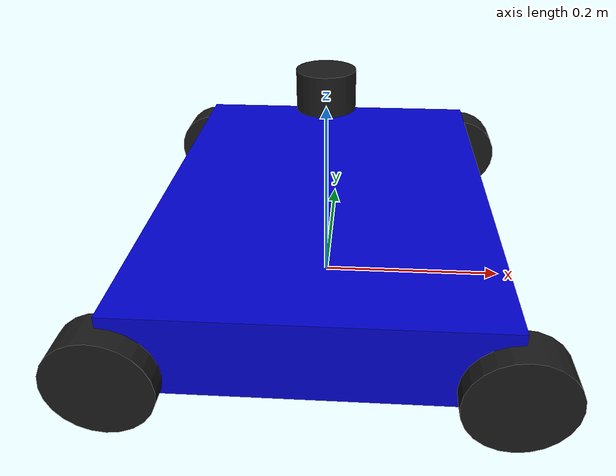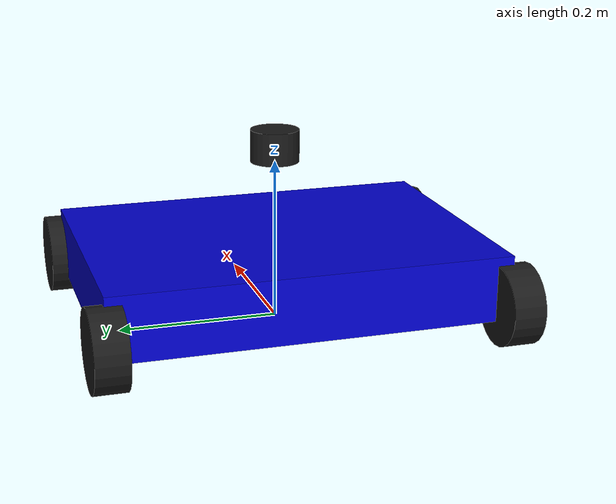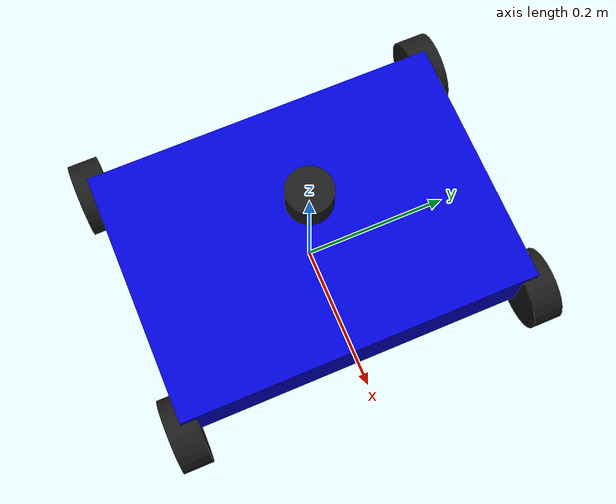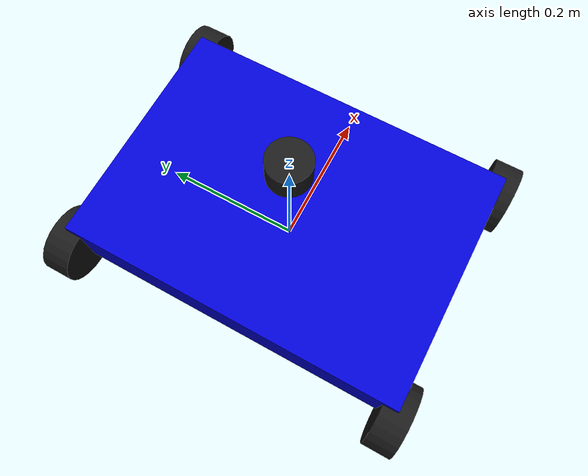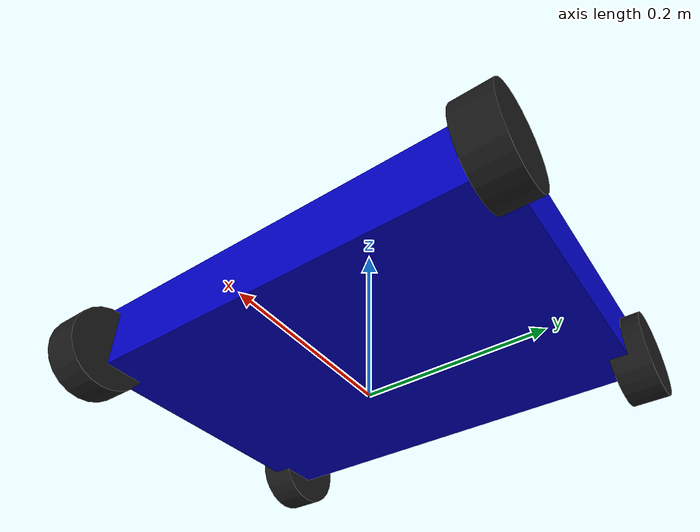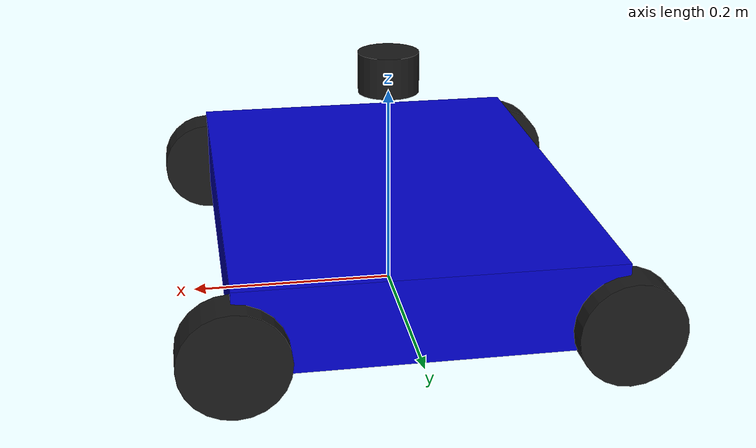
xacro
<?xml version="1.0"?>
<robot name="khr2026_robot" xmlns:xacro="http://www.ros.org/wiki/xacro">

  <xacro:include filename="$(find khr2026_team1_simulation)/urdf/mecanum_wheel.xacro"/>
  <xacro:include filename="$(find khr2026_team1_simulation)/urdf/lidar.xacro"/>

  <xacro:property name="wheel_radius" value="0.04925"/>
  <xacro:property name="wheel_width"  value="0.04"/>
  <xacro:property name="base_width"   value="0.485"/>
  <xacro:property name="base_length"  value="0.345"/>
  <xacro:property name="base_height"  value="0.08"/>

  <link name="base_footprint"/>
  <joint name="base_joint" type="fixed">
    <parent link="base_footprint"/>
    <child link="base_link"/>
    <origin xyz="0 0 0.07" rpy="0 0 0"/>
  </joint>

  <link name="base_link">
    <visual>
      <geometry><box size="${base_length} ${base_width} ${base_height}"/></geometry>
      <material name="blue"><color rgba="0.0 0.0 0.8 1.0"/></material>
    </visual>
    <collision>
      <geometry><box size="${base_length} ${base_width} ${base_height}"/></geometry>
    </collision>
    <inertial>
      <mass value="10.0"/>
      <inertia ixx="0.1" ixy="0" ixz="0" iyy="0.1" iyz="0" izz="0.1"/>
    </inertial>
  </link>

  <xacro:mecanum_wheel prefix="front_left"  side="1"  radius="${wheel_radius}" width="${wheel_width}" x="0.1725"  y="0.2425"  z="-0.02"/>
  <xacro:mecanum_wheel prefix="front_right" side="-1" radius="${wheel_radius}" width="${wheel_width}" x="0.1725"  y="-0.2425" z="-0.02"/>
  <xacro:mecanum_wheel prefix="rear_left"   side="1"  radius="${wheel_radius}" width="${wheel_width}" x="-0.1725" y="0.2425"  z="-0.02"/>
  <xacro:mecanum_wheel prefix="rear_right"  side="-1" radius="${wheel_radius}" width="${wheel_width}" x="-0.1725" y="-0.2425" z="-0.02"/>

  <xacro:robot_lidar parent_link="base_link"/>

  <!-- IMU -->
  <link name="imu_link">
    <inertial><mass value="0.01"/><inertia ixx="1e-5" ixy="0" ixz="0" iyy="1e-5" iyz="0" izz="1e-5"/></inertial>
  </link>
  <joint name="imu_joint" type="fixed">
    <parent link="base_link"/><child link="imu_link"/><origin xyz="0 0 0.05"/>
  </joint>

  <gazebo>
    <plugin filename="gz-sim-mecanum-drive-system" name="gz::sim::systems::MecanumDrive">
      <front_left_joint>front_left_wheel_joint</front_left_joint>
      <front_right_joint>front_right_wheel_joint</front_right_joint>
      <back_left_joint>rear_left_wheel_joint</back_left_joint>
      <back_right_joint>rear_right_wheel_joint</back_right_joint>
      <wheel_separation>0.485</wheel_separation>
      <wheelbase>0.345</wheelbase>
      <wheel_radius>${wheel_radius}</wheel_radius>
      <topic>/model/khr2026_robot/cmd_vel</topic>
      <odom_topic>/model/khr2026_robot/odometry</odom_topic>
      <tf_topic>/model/khr2026_robot/tf</tf_topic>
      <frame_id>odom</frame_id>
      <child_frame_id>base_footprint</child_frame_id>
      <robot_base_frame>base_footprint</robot_base_frame>
      <footprint_frame_id>base_footprint</footprint_frame_id>
      <publish_odom_tf>true</publish_odom_tf>
      <publish_wheel_tf>false</publish_wheel_tf>
    </plugin>
    <plugin filename="gz-sim-joint-state-publisher-system" name="gz::sim::systems::JointStatePublisher">
      <topic>/world/khr2026_field_generated/model/khr2026_robot/joint_state</topic>
      <joint_name>front_left_wheel_joint</joint_name>
      <joint_name>front_right_wheel_joint</joint_name>
      <joint_name>rear_left_wheel_joint</joint_name>
      <joint_name>rear_right_wheel_joint</joint_name>
    </plugin>
    <plugin filename="gz-sim-imu-system" name="gz::sim::systems::Imu"/>
  </gazebo>

  <gazebo reference="imu_link">
    <sensor name="imu_sensor" type="imu">
      <always_on>1</always_on>
      <update_rate>100</update_rate>
      <topic>imu</topic>
    </sensor>
  </gazebo>

</robot>

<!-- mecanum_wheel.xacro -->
<robot xmlns:xacro="http://www.ros.org/wiki/xacro">
  <xacro:macro name="mecanum_wheel" params="prefix side radius width x y z">
    <link name="${prefix}_wheel_link">
      <visual>
        <origin xyz="0 0 0" rpy="${pi/2} 0 0"/>
        <geometry><cylinder radius="${radius}" length="${width}"/></geometry>
        <material name="black"><color rgba="0.1 0.1 0.1 1.0"/></material>
      </visual>
       <collision>
         <origin xyz="0 0 0" rpy="${pi/2} 0 0"/>
         <geometry><cylinder radius="${radius}" length="${width}"/></geometry>
         <surface>
           <friction>
             <ode>
               <mu>1.0</mu>
               <mu2>1.0</mu2>
             </ode>
           </friction>
         </surface>
       </collision>
       <inertial>
         <mass value="0.5"/>
         <inertia ixx="0.001" ixy="0" ixz="0" iyy="0.001" iyz="0" izz="0.001"/>
       </inertial>
     </link>
     <gazebo reference="${prefix}_wheel_link">
       <material>Gazebo/Black</material>
       <mu1>1.0</mu1>
       <mu2>1.0</mu2>
     </gazebo>
     <joint name="${prefix}_wheel_joint" type="continuous">
      <parent link="base_link"/>
      <child link="${prefix}_wheel_link"/>
      <origin xyz="${x} ${y} ${z}" rpy="0 0 0"/>
      <axis xyz="0 1 0"/>
    </joint>
  </xacro:macro>
</robot>

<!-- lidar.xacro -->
<robot xmlns:xacro="http://www.ros.org/wiki/xacro">
  <xacro:macro name="robot_lidar" params="parent_link">
    <!-- Laser Frame -->
    <link name="laser_frame">
      <visual>
        <geometry><cylinder radius="0.03" length="0.04"/></geometry>
        <material name="black">
          <color rgba="0.1 0.1 0.1 1"/>
        </material>
      </visual>
      <collision>
        <geometry><cylinder radius="0.03" length="0.04"/></geometry>
      </collision>
      <inertial><mass value="0.1"/><inertia ixx="0.001" ixy="0" ixz="0" iyy="0.001" iyz="0" izz="0.001"/></inertial>
    </link>
    <joint name="laser_joint" type="fixed">
      <parent link="${parent_link}"/>
      <child link="laser_frame"/>
      <origin xyz="0 0 0.15" rpy="0 0 1.5708"/>
    </joint>

    <gazebo reference="laser_frame">
      <material>Gazebo/Black</material>
      <sensor name="lidar" type="gpu_lidar">
        <pose>0 0 0 0 0 0</pose>
        <always_on>1</always_on>
        <visualize>true</visualize>
        <update_rate>10</update_rate>
        <topic>scan</topic>
        <gz_frame_id>laser_frame</gz_frame_id>
        <lidar>
          <scan>
            <horizontal>
              <samples>720</samples>
              <resolution>1.0</resolution>
              <min_angle>-3.14159</min_angle>
              <max_angle>3.14159</max_angle>
            </horizontal>
          </scan>
          <range>
            <min>0.05</min>
            <max>10.0</max>
            <resolution>0.01</resolution>
          </range>
        </lidar>
      </sensor>
    </gazebo>
  </xacro:macro>
</robot>
